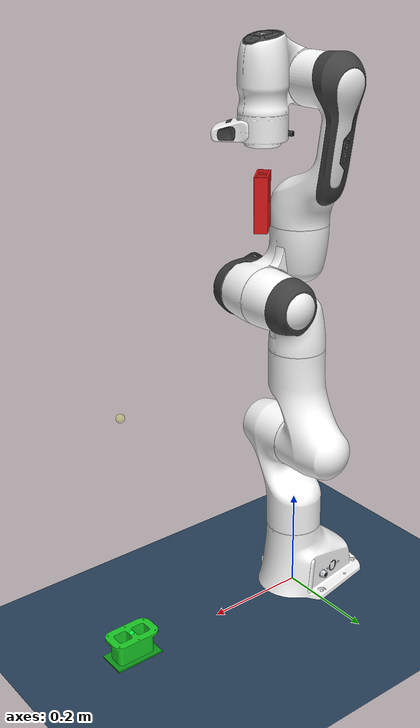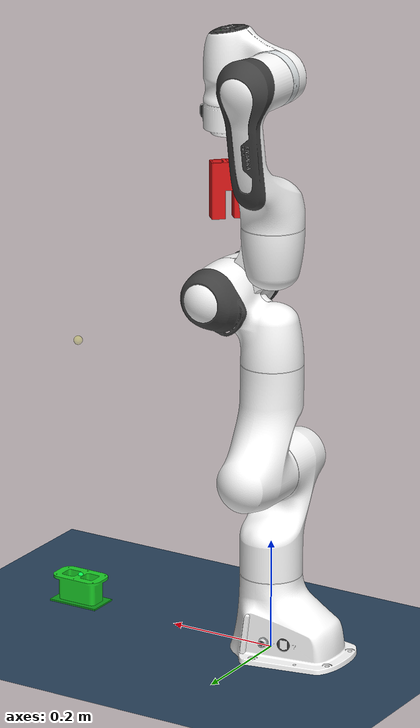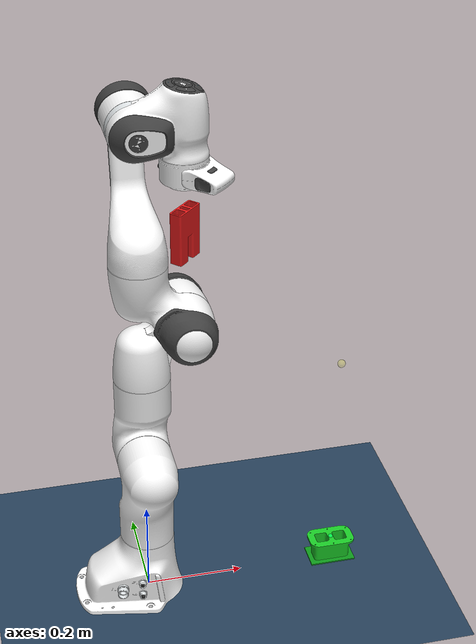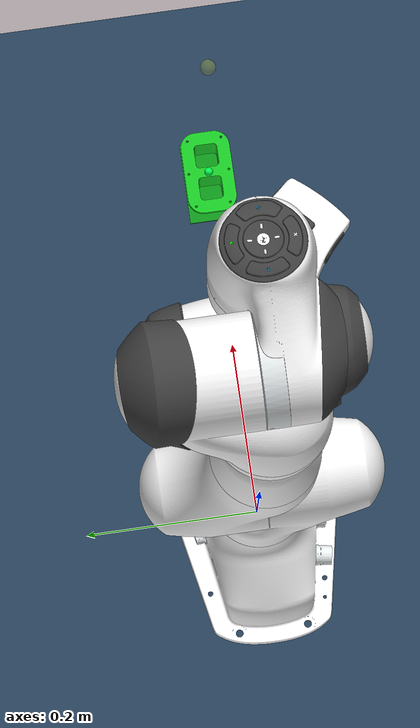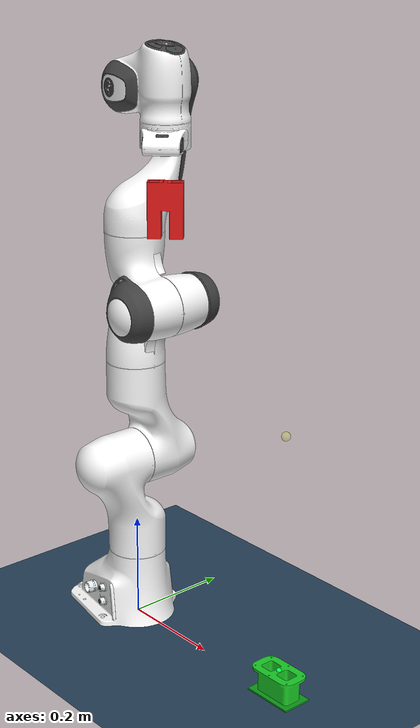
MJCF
<mujoco model="InsertArena">
  <include file="panda_insert.xml"/>

  <option timestep=".002" noslip_iterations="5" noslip_tolerance="0"/>

  <statistic center="0.35 0 0.4" extent=".8"/>

  <visual>
    <headlight diffuse=".4 .4 .4" ambient=".5 .5 .5"/>
    <global azimuth="160" elevation="-20" offheight="128" offwidth="128"/>
    <quality offsamples="8"/>
  </visual>

  <asset>
    <texture type="skybox" builtin="gradient" rgb1=".3 .5 .7" rgb2="0 0 0" width="32" height="512"/>
    <texture name="grid" type="2d" builtin="checker" width="512" height="512" rgb1=".1 .2 .3" rgb2=".2 .3 .4"/>
    <material name="grid" texture="grid" texrepeat="2 2" texuniform="true" reflectance="0"/>
    <!-- STL meshes: 红插头 (red plug), 绿插座 (green socket) -->
    <!-- scale="0.001 0.001 0.001" converts mm -> m (typical CAD export unit) -->
    <mesh name="red_plug_mesh"    file="红插头.STL"   scale="0.001 0.001 0.001"/>
    <mesh name="green_socket_mesh" file="绿插座.STL"  scale="0.001 0.001 0.001"/>
  </asset>

  <worldbody>
    <camera name="front" pos="1.3 0.0 0.8" quat="0.5963678 0.3799282 0.3799282 0.5963678" fovy="45"/>
    <light pos="0 0 3" dir="0 0 -1" diffuse="1 1 1" specular=".3 .3 .3"/>
    <light pos="0.4 0 1.0" mode="targetbodycom" target="socket" diffuse=".8 .8 .8" specular=".3 .3 .3"/>
    <geom name="floor" size="3 3 0.01" type="plane" material="grid"/>

    <body name="socket" pos="0.4 0 0.002">
      <freejoint name="socket_joint"/>
      <!-- Visual mesh (now correctly centered and oriented: X±48mm, Y±29mm, Z 0-50mm) -->
      <geom name="socket_visual" type="mesh" mesh="green_socket_mesh"
            rgba="0.1 0.8 0.15 1" contype="0" conaffinity="0" group="2"/>
      <!-- Outer left wall  (X: -48 to -38, full Y, full Z) -->
      <geom name="sock_wall_ol" type="box" size="0.005 0.0287 0.025"
            pos="-0.0433 0 0.025" rgba="0.1 0.8 0.15 0" mass="0.2"/>
      <!-- Outer right wall (X: +38 to +48, full Y, full Z) -->
      <geom name="sock_wall_or" type="box" size="0.005 0.0287 0.025"
            pos=" 0.0433 0 0.025" rgba="0.1 0.8 0.15 0" mass="0.2"/>
      <!-- Center divider  (X: -9 to +9, hole depth Y, full Z) -->
      <geom name="sock_wall_cd" type="box" size="0.0086 0.011 0.025"
            pos="0 0 0.025" rgba="0.1 0.8 0.15 0" mass="0.2"/>
      <!-- Front wall (full X, Y: +11 to +29, full Z) -->
      <geom name="sock_wall_f" type="box" size="0.0483 0.009 0.025"
            pos="0 0.0197 0.025" rgba="0.1 0.8 0.15 0" mass="0.4"/>
      <!-- Back wall  (full X, Y: -29 to -11, full Z) -->
      <geom name="sock_wall_b" type="box" size="0.0483 0.009 0.025"
            pos="0 -0.0197 0.025" rgba="0.1 0.8 0.15 0" mass="0.4"/>
      <!-- Bottom plate (full footprint, Z: 0 to 3mm) -->
      <geom name="sock_bottom" type="box" size="0.0483 0.0287 0.0015"
            pos="0 0 0.0015" rgba="0.05 0.6 0.1 1" mass="1.0"/>
      <!-- Opening site: top of the socket hole (Z = 50 mm) -->
      <site name="socket_opening" pos="0 0 0.050" size="0.005" rgba="0 1 0.3 1"/>
    </body>

    <!-- Invisible target helper for visualising goal (can be used in reward shaping) -->
    <body name="target" pos=".4 0 .5" quat="0 1 0 0" mocap="true">
      <geom name="target" type="sphere" size=".008" contype="0" conaffinity="0"
            rgba=".9 .9 .1 0.25"/>
    </body>
  </worldbody>

  <sensor>
    <!-- Connector insertion tip (world position) -->
    <framepos name="connector_tip_pos"    objtype="site" objname="connector_tip"/>
    <!-- Socket opening centre (world position, = insertion target) -->
    <framepos name="socket_opening_pos"  objtype="site" objname="socket_opening"/>
    <!-- Whole socket body position (used in observation) -->
    <framepos name="socket_pos"           objtype="body" objname="socket"/>
    <!-- Gripper pinch (inherited from panda.xml, convenient alias) -->
  </sensor>
</mujoco>

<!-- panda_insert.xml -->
<mujoco model="panda">
  <compiler angle="radian" autolimits="true"/>

  <default>
    <default class="panda">
      <joint armature="0.1" damping="1" axis="0 0 1" range="-2.8973 2.8973"/>
      <default class="panda/visual">
        <geom type="mesh" contype="0" conaffinity="0" group="2"/>
      </default>
      <default class="panda/collision">
        <geom type="mesh" group="3"/>
      </default>
      <site size="0.001" rgba="0.5 0.5 0.5 0.3" group="4"/>
    </default>
    <default class="2f85">
      <mesh scale="0.001 0.001 0.001"/>
      <general biastype="affine"/>
      <site type="sphere" rgba="0.9 0.9 0.9 1" size="0.005" group="4"/>
      <joint axis="1 0 0"/>
      <default class="driver">
        <joint range="0 0.8" armature="0.005" damping="0.1" solimplimit="0.95 0.99 0.001" solreflimit="0.005 1"/>
      </default>
      <default class="follower">
        <joint range="-0.872664 0.872664" pos="0 -0.018 0.0065" solimplimit="0.95 0.99 0.001" solreflimit="0.005 1"/>
      </default>
      <default class="spring_link">
        <joint range="-0.29670597283 0.8" stiffness="0.05" springref="2.62" damping="0.00125"/>
      </default>
      <default class="coupler">
        <joint range="-1.57 0" solimplimit="0.95 0.99 0.001" solreflimit="0.005 1"/>
      </default>
      <default class="2f85/visual">
        <geom type="mesh" contype="0" conaffinity="0" group="2"/>
      </default>
      <default class="2f85/collision">
        <geom type="mesh" group="3"/>
        <default class="pad_box1">
          <geom mass="0" type="box" pos="0 -0.0026 0.028125" size="0.011 0.004 0.009375" friction="0.7"
            solimp="0.95 0.99 0.001" solref="0.004 1" priority="1" rgba="0.55 0.55 0.55 1"/>
        </default>
        <default class="pad_box2">
          <geom mass="0" type="box" pos="0 -0.0026 0.009375" size="0.011 0.004 0.009375" friction="0.6"
            solimp="0.95 0.99 0.001" solref="0.004 1" priority="1" rgba="0.45 0.45 0.45 1"/>
        </default>
      </default>
    </default>
  </default>

  <asset>
    <material name="white" rgba="1 1 1 1"/>
    <material name="off_white" rgba="0.901961 0.921569 0.929412 1"/>
    <material name="dark_grey" rgba="0.25 0.25 0.25 1"/>
    <material name="green" rgba="0 1 0 1"/>
    <material name="light_blue" rgba="0.039216 0.541176 0.780392 1"/>
    <material name="metal" rgba="0.58 0.58 0.58 1"/>
    <material name="silicone" rgba="0.1882 0.1882 0.1882 1"/>
    <material name="gray" rgba="0.4627 0.4627 0.4627 1"/>
    <material name="black" rgba="0.149 0.149 0.149 1"/>

    <mesh name="link0_c" file="franka_emika_panda/assets/link0.stl"/>
    <mesh name="link1_c" file="franka_emika_panda/assets/link1.stl"/>
    <mesh name="link2_c" file="franka_emika_panda/assets/link2.stl"/>
    <mesh name="link3_c" file="franka_emika_panda/assets/link3.stl"/>
    <mesh name="link4_c" file="franka_emika_panda/assets/link4.stl"/>
    <mesh name="link5_c0" file="franka_emika_panda/assets/link5_collision_0.obj"/>
    <mesh name="link5_c1" file="franka_emika_panda/assets/link5_collision_1.obj"/>
    <mesh name="link5_c2" file="franka_emika_panda/assets/link5_collision_2.obj"/>
    <mesh name="link6_c" file="franka_emika_panda/assets/link6.stl"/>
    <mesh name="link7_c" file="franka_emika_panda/assets/link7.stl"/>
    <mesh file="franka_emika_panda/assets/link0_0.obj"/>
    <mesh file="franka_emika_panda/assets/link0_1.obj"/>
    <mesh file="franka_emika_panda/assets/link0_2.obj"/>
    <mesh file="franka_emika_panda/assets/link0_3.obj"/>
    <mesh file="franka_emika_panda/assets/link0_4.obj"/>
    <mesh file="franka_emika_panda/assets/link0_5.obj"/>
    <mesh file="franka_emika_panda/assets/link0_7.obj"/>
    <mesh file="franka_emika_panda/assets/link0_8.obj"/>
    <mesh file="franka_emika_panda/assets/link0_9.obj"/>
    <mesh file="franka_emika_panda/assets/link0_10.obj"/>
    <mesh file="franka_emika_panda/assets/link0_11.obj"/>
    <mesh file="franka_emika_panda/assets/link1.obj"/>
    <mesh file="franka_emika_panda/assets/link2.obj"/>
    <mesh file="franka_emika_panda/assets/link3_0.obj"/>
    <mesh file="franka_emika_panda/assets/link3_1.obj"/>
    <mesh file="franka_emika_panda/assets/link3_2.obj"/>
    <mesh file="franka_emika_panda/assets/link3_3.obj"/>
    <mesh file="franka_emika_panda/assets/link4_0.obj"/>
    <mesh file="franka_emika_panda/assets/link4_1.obj"/>
    <mesh file="franka_emika_panda/assets/link4_2.obj"/>
    <mesh file="franka_emika_panda/assets/link4_3.obj"/>
    <mesh file="franka_emika_panda/assets/link5_0.obj"/>
    <mesh file="franka_emika_panda/assets/link5_1.obj"/>
    <mesh file="franka_emika_panda/assets/link5_2.obj"/>
    <mesh file="franka_emika_panda/assets/link6_0.obj"/>
    <mesh file="franka_emika_panda/assets/link6_1.obj"/>
    <mesh file="franka_emika_panda/assets/link6_2.obj"/>
    <mesh file="franka_emika_panda/assets/link6_3.obj"/>
    <mesh file="franka_emika_panda/assets/link6_4.obj"/>
    <mesh file="franka_emika_panda/assets/link6_5.obj"/>
    <mesh file="franka_emika_panda/assets/link6_6.obj"/>
    <mesh file="franka_emika_panda/assets/link6_7.obj"/>
    <mesh file="franka_emika_panda/assets/link6_8.obj"/>
    <mesh file="franka_emika_panda/assets/link6_9.obj"/>
    <mesh file="franka_emika_panda/assets/link6_10.obj"/>
    <mesh file="franka_emika_panda/assets/link6_11.obj"/>
    <mesh file="franka_emika_panda/assets/link6_12.obj"/>
    <mesh file="franka_emika_panda/assets/link6_13.obj"/>
    <mesh file="franka_emika_panda/assets/link6_14.obj"/>
    <mesh file="franka_emika_panda/assets/link6_15.obj"/>
    <mesh file="franka_emika_panda/assets/link6_16.obj"/>
    <mesh file="franka_emika_panda/assets/link7_0.obj"/>
    <mesh file="franka_emika_panda/assets/link7_1.obj"/>
    <mesh file="franka_emika_panda/assets/link7_2.obj"/>
    <mesh file="franka_emika_panda/assets/link7_3.obj"/>
    <mesh file="franka_emika_panda/assets/link7_4.obj"/>
    <mesh file="franka_emika_panda/assets/link7_5.obj"/>
    <mesh file="franka_emika_panda/assets/link7_6.obj"/>
    <mesh file="franka_emika_panda/assets/link7_7.obj"/>
    <mesh class="2f85" file="robotiq_2f85/assets/base_mount.stl"/>
    <mesh class="2f85" file="robotiq_2f85/assets/base.stl"/>
    <mesh class="2f85" file="robotiq_2f85/assets/driver.stl"/>
    <mesh class="2f85" file="robotiq_2f85/assets/coupler.stl"/>
    <mesh class="2f85" file="robotiq_2f85/assets/follower.stl"/>
    <mesh class="2f85" file="robotiq_2f85/assets/pad.stl"/>
    <mesh class="2f85" file="robotiq_2f85/assets/silicone_pad.stl"/>
    <mesh class="2f85" file="robotiq_2f85/assets/spring_link.stl"/>
  </asset>

  <worldbody>
    <body name="link0" childclass="panda">
      <inertial mass="0.629769" pos="-0.041018 -0.00014 0.049974"
        fullinertia="0.00315 0.00388 0.004285 8.2904e-7 0.00015 8.2299e-6"/>
      <geom mesh="link0_0" material="off_white" class="panda/visual"/>
      <geom mesh="link0_1" material="dark_grey" class="panda/visual"/>
      <geom mesh="link0_2" material="off_white" class="panda/visual"/>
      <geom mesh="link0_3" material="dark_grey" class="panda/visual"/>
      <geom mesh="link0_4" material="off_white" class="panda/visual"/>
      <geom mesh="link0_5" material="dark_grey" class="panda/visual"/>
      <geom mesh="link0_7" material="white" class="panda/visual"/>
      <geom mesh="link0_8" material="white" class="panda/visual"/>
      <geom mesh="link0_9" material="dark_grey" class="panda/visual"/>
      <geom mesh="link0_10" material="off_white" class="panda/visual"/>
      <geom mesh="link0_11" material="white" class="panda/visual"/>
      <geom mesh="link0_c" class="panda/collision"/>
      <body name="link1" pos="0 0 0.333">
        <inertial mass="4.970684" pos="0.003875 0.002081 -0.04762"
          fullinertia="0.70337 0.70661 0.0091170 -0.00013900 0.0067720 0.019169"/>
        <joint name="joint1"/>
        <site name="joint1"/>
        <geom material="white" mesh="link1" class="panda/visual"/>
        <geom mesh="link1_c" class="panda/collision"/>
        <body name="link2" quat="1 -1 0 0">
          <inertial mass="0.646926" pos="-0.003141 -0.02872 0.003495"
            fullinertia="0.0079620 2.8110e-2 2.5995e-2 -3.925e-3 1.0254e-2 7.04e-4"/>
          <joint name="joint2" range="-1.7628 1.7628"/>
          <site name="joint2"/>
          <geom material="white" mesh="link2" class="panda/visual"/>
          <geom mesh="link2_c" class="panda/collision"/>
          <body name="link3" pos="0 -0.316 0" quat="1 1 0 0">
            <inertial mass="3.228604" pos="2.7518e-2 3.9252e-2 -6.6502e-2"
              fullinertia="3.7242e-2 3.6155e-2 1.083e-2 -4.761e-3 -1.1396e-2 -1.2805e-2"/>
            <joint name="joint3"/>
            <site name="joint3"/>
            <geom mesh="link3_0" material="white" class="panda/visual"/>
            <geom mesh="link3_1" material="white" class="panda/visual"/>
            <geom mesh="link3_2" material="white" class="panda/visual"/>
            <geom mesh="link3_3" material="dark_grey" class="panda/visual"/>
            <geom mesh="link3_c" class="panda/collision"/>
            <body name="link4" pos="0.0825 0 0" quat="1 1 0 0">
              <inertial mass="3.587895" pos="-5.317e-2 1.04419e-1 2.7454e-2"
                fullinertia="2.5853e-2 1.9552e-2 2.8323e-2 7.796e-3 -1.332e-3 8.641e-3"/>
              <joint name="joint4" range="-3.0718 -0.0698"/>
              <site name="joint4"/>
              <geom mesh="link4_0" material="white" class="panda/visual"/>
              <geom mesh="link4_1" material="white" class="panda/visual"/>
              <geom mesh="link4_2" material="dark_grey" class="panda/visual"/>
              <geom mesh="link4_3" material="white" class="panda/visual"/>
              <geom mesh="link4_c" class="panda/collision"/>
              <body name="link5" pos="-0.0825 0.384 0" quat="1 -1 0 0">
                <inertial mass="1.225946" pos="-1.1953e-2 4.1065e-2 -3.8437e-2"
                  fullinertia="3.5549e-2 2.9474e-2 8.627e-3 -2.117e-3 -4.037e-3 2.29e-4"/>
                <joint name="joint5"/>
                <site name="joint5"/>
                <geom mesh="link5_0" material="dark_grey" class="panda/visual"/>
                <geom mesh="link5_1" material="white" class="panda/visual"/>
                <geom mesh="link5_2" material="white" class="panda/visual"/>
                <geom mesh="link5_c0" class="panda/collision"/>
                <geom mesh="link5_c1" class="panda/collision"/>
                <geom mesh="link5_c2" class="panda/collision"/>
                <body name="link6" quat="1 1 0 0">
                  <inertial mass="1.666555" pos="6.0149e-2 -1.4117e-2 -1.0517e-2"
                    fullinertia="1.964e-3 4.354e-3 5.433e-3 1.09e-4 -1.158e-3 3.41e-4"/>
                  <joint name="joint6" range="-0.0175 3.7525"/>
                  <site name="joint6"/>
                  <geom mesh="link6_0" material="off_white" class="panda/visual"/>
                  <geom mesh="link6_1" material="white" class="panda/visual"/>
                  <geom mesh="link6_2" material="dark_grey" class="panda/visual"/>
                  <geom mesh="link6_3" material="white" class="panda/visual"/>
                  <geom mesh="link6_4" material="white" class="panda/visual"/>
                  <geom mesh="link6_5" material="white" class="panda/visual"/>
                  <geom mesh="link6_6" material="white" class="panda/visual"/>
                  <geom mesh="link6_7" material="light_blue" class="panda/visual"/>
                  <geom mesh="link6_8" material="light_blue" class="panda/visual"/>
                  <geom mesh="link6_9" material="dark_grey" class="panda/visual"/>
                  <geom mesh="link6_10" material="dark_grey" class="panda/visual"/>
                  <geom mesh="link6_11" material="white" class="panda/visual"/>
                  <geom mesh="link6_12" material="green" class="panda/visual"/>
                  <geom mesh="link6_13" material="white" class="panda/visual"/>
                  <geom mesh="link6_14" material="dark_grey" class="panda/visual"/>
                  <geom mesh="link6_15" material="dark_grey" class="panda/visual"/>
                  <geom mesh="link6_16" material="white" class="panda/visual"/>
                  <geom mesh="link6_c" class="panda/collision"/>
                  <body name="link7" pos="0.088 0 0" quat="1 1 0 0">
                    <inertial mass="7.35522e-01" pos="1.0517e-2 -4.252e-3 6.1597e-2"
                      fullinertia="1.2516e-2 1.0027e-2 4.815e-3 -4.28e-4 -1.196e-3 -7.41e-4"/>
                    <joint name="joint7"/>
                    <site name="joint7"/>
                    <geom mesh="link7_0" material="white" class="panda/visual"/>
                    <geom mesh="link7_1" material="dark_grey" class="panda/visual"/>
                    <geom mesh="link7_2" material="dark_grey" class="panda/visual"/>
                    <geom mesh="link7_3" material="dark_grey" class="panda/visual"/>
                    <geom mesh="link7_4" material="dark_grey" class="panda/visual"/>
                    <geom mesh="link7_5" material="dark_grey" class="panda/visual"/>
                    <geom mesh="link7_6" material="dark_grey" class="panda/visual"/>
                    <geom mesh="link7_7" material="white" class="panda/visual"/>
                    <geom mesh="link7_c" class="panda/collision"/>
                    <body name="attachment" pos="0 0 0.107" quat="0.3826834 0 0 0.9238795">
                      <camera name="handcam_depth" pos="-0.05 0 0" fovy="62" quat="0 1 -1 0"/>
                      <camera name="handcam_rgb" pos="-0.05 0.015 0" fovy="42.5" quat="0 1 -1 0"/>
                      <site name="attachment_site" quat="0 0 0 1"/>
                      <body name="base_mount" quat="-1 0 0 1" childclass="2f85">
                        <geom class="2f85/visual" mesh="base_mount" material="black"/>
                        <geom class="2f85/collision" mesh="base_mount"/>
                        <body name="base" pos="0 0 0.0038" quat="1 0 0 -1">
                          <inertial mass="0.777441" pos="0 -2.70394e-05 0.0354675" quat="1 -0.00152849 0 0"
                            diaginertia="0.000260285 0.000225381 0.000152708"/>
                          <geom class="2f85/visual" mesh="base" material="black"/>
                          <geom class="2f85/collision" mesh="base"/>
                          <site name="pinch" pos="0 0 0.145"/>
                          <body name="connector" pos="0 0 0.045">
                            <!-- Connector body at 4.5 cm below gripper base (in fingers region).
                                 Z=0 is top of plug, Z=0.1m is tip -> tip aligns with pinch site. -->
                            <geom name="connector_visual" type="mesh" mesh="red_plug_mesh"
                                  rgba="0.9 0.1 0.1 1" contype="0" conaffinity="0" group="2"/>
                            <site name="connector_tip" pos="0 0 0.100" size="0.005" rgba="1 0.2 0.2 1"/>
                          </body>
                          <body name="right_driver" pos="0 0.0306011 0.054904">
                            <inertial mass="0.00899563" pos="2.96931e-12 0.0177547 0.00107314"
                              quat="0.681301 0.732003 0 0" diaginertia="1.72352e-06 1.60906e-06 3.22006e-07"/>
                            <joint name="right_driver_joint" class="driver"/>
                            <geom class="2f85/visual" mesh="driver" material="gray"/>
                            <geom class="2f85/collision" mesh="driver"/>
                            <body name="right_coupler" pos="0 0.0315 -0.0041">
                              <inertial mass="0.0140974" pos="0 0.00301209 0.0232175"
                                quat="0.705636 -0.0455904 0.0455904 0.705636"
                                diaginertia="4.16206e-06 3.52216e-06 8.88131e-07"/>
                              <joint name="right_coupler_joint" class="coupler"/>
                              <geom class="2f85/visual" mesh="coupler" material="black"/>
                              <geom class="2f85/collision" mesh="coupler"/>
                            </body>
                          </body>
                          <body name="right_spring_link" pos="0 0.0132 0.0609">
                            <inertial mass="0.0221642" pos="-8.65005e-09 0.0181624 0.0212658"
                              quat="0.663403 -0.244737 0.244737 0.663403"
                              diaginertia="8.96853e-06 6.71733e-06 2.63931e-06"/>
                            <joint name="right_spring_link_joint" class="spring_link"/>
                            <geom class="2f85/visual" mesh="spring_link" material="black"/>
                            <geom class="2f85/collision" mesh="spring_link"/>
                            <body name="right_follower" pos="0 0.055 0.0375">
                              <inertial mass="0.0125222" pos="0 -0.011046 0.0124786" quat="1 0.1664 0 0"
                                diaginertia="2.67415e-06 2.4559e-06 6.02031e-07"/>
                              <joint name="right_follower_joint" class="follower"/>
                              <geom class="2f85/visual" mesh="follower" material="black"/>
                              <geom class="2f85/collision" mesh="follower"/>
                              <body name="right_pad" pos="0 -0.0189 0.01352">
                                <geom class="pad_box1" name="right_pad1"/>
                                <geom class="pad_box2" name="right_pad2"/>
                                <inertial mass="0.0035" pos="0 -0.0025 0.0185" quat="0.707107 0 0 0.707107"
                                  diaginertia="4.73958e-07 3.64583e-07 1.23958e-07"/>
                                <geom class="2f85/visual" mesh="pad"/>
                                <body name="right_silicone_pad">
                                  <geom class="2f85/visual" mesh="silicone_pad" material="black"/>
                                </body>
                              </body>
                            </body>
                          </body>
                          <body name="left_driver" pos="0 -0.0306011 0.054904" quat="0 0 0 1">
                            <inertial mass="0.00899563" pos="0 0.0177547 0.00107314" quat="0.681301 0.732003 0 0"
                              diaginertia="1.72352e-06 1.60906e-06 3.22006e-07"/>
                            <joint name="left_driver_joint" class="driver"/>
                            <geom class="2f85/visual" mesh="driver" material="gray"/>
                            <geom class="2f85/collision" mesh="driver"/>
                            <body name="left_coupler" pos="0 0.0315 -0.0041">
                              <inertial mass="0.0140974" pos="0 0.00301209 0.0232175"
                                quat="0.705636 -0.0455904 0.0455904 0.705636"
                                diaginertia="4.16206e-06 3.52216e-06 8.88131e-07"/>
                              <joint name="left_coupler_joint" class="coupler"/>
                              <geom class="2f85/visual" mesh="coupler" material="black"/>
                              <geom class="2f85/collision" mesh="coupler"/>
                            </body>
                          </body>
                          <body name="left_spring_link" pos="0 -0.0132 0.0609" quat="0 0 0 1">
                            <inertial mass="0.0221642" pos="-8.65005e-09 0.0181624 0.0212658"
                              quat="0.663403 -0.244737 0.244737 0.663403"
                              diaginertia="8.96853e-06 6.71733e-06 2.63931e-06"/>
                            <joint name="left_spring_link_joint" class="spring_link"/>
                            <geom class="2f85/visual" mesh="spring_link" material="black"/>
                            <geom class="2f85/collision" mesh="spring_link"/>
                            <body name="left_follower" pos="0 0.055 0.0375">
                              <inertial mass="0.0125222" pos="0 -0.011046 0.0124786" quat="1 0.1664 0 0"
                                diaginertia="2.67415e-06 2.4559e-06 6.02031e-07"/>
                              <joint name="left_follower_joint" class="follower"/>
                              <geom class="2f85/visual" mesh="follower" material="black"/>
                              <geom class="2f85/collision" mesh="follower"/>
                              <body name="left_pad" pos="0 -0.0189 0.01352">
                                <geom class="pad_box1" name="left_pad1"/>
                                <geom class="pad_box2" name="left_pad2"/>
                                <inertial mass="0.0035" pos="0 -0.0025 0.0185" quat="1 0 0 1"
                                  diaginertia="4.73958e-07 3.64583e-07 1.23958e-07"/>
                                <geom class="2f85/visual" mesh="pad"/>
                                <body name="left_silicone_pad">
                                  <geom class="2f85/visual" mesh="silicone_pad" material="black"/>
                                </body>
                              </body>
                            </body>
                          </body>
                        </body>
                      </body>
                    </body>
                  </body>
                </body>
              </body>
            </body>
          </body>
        </body>
      </body>
    </body>
  </worldbody>

  <contact>
    <exclude body1="base" body2="left_driver"/>
    <exclude body1="base" body2="right_driver"/>
    <exclude body1="base" body2="left_spring_link"/>
    <exclude body1="base" body2="right_spring_link"/>
    <exclude body1="right_coupler" body2="right_follower"/>
    <exclude body1="left_coupler" body2="left_follower"/>
  </contact>

  <tendon>
    <fixed name="split">
      <joint joint="right_driver_joint" coef="0.5"/>
      <joint joint="left_driver_joint" coef="0.5"/>
    </fixed>
  </tendon>

  <equality>
    <connect anchor="0 0 0" body1="right_follower" body2="right_coupler" solimp="0.95 0.99 0.001" solref="0.005 1"/>
    <connect anchor="0 0 0" body1="left_follower" body2="left_coupler" solimp="0.95 0.99 0.001" solref="0.005 1"/>
    <joint joint1="right_driver_joint" joint2="left_driver_joint" polycoef="0 1 0 0 0" solimp="0.95 0.99 0.001"
      solref="0.005 1"/>
  </equality>

  <actuator>
    <motor class="panda" name="actuator1" joint="joint1" ctrlrange="-87 87"/>
    <motor class="panda" name="actuator2" joint="joint2" ctrlrange="-87 87"/>
    <motor class="panda" name="actuator3" joint="joint3" ctrlrange="-87 87"/>
    <motor class="panda" name="actuator4" joint="joint4" ctrlrange="-87 87"/>
    <motor class="panda" name="actuator5" joint="joint5" ctrlrange="-12 12"/>
    <motor class="panda" name="actuator6" joint="joint6" ctrlrange="-12 12"/>
    <motor class="panda" name="actuator7" joint="joint7" ctrlrange="-12 12"/>
    <general class="2f85" name="fingers_actuator" tendon="split" forcerange="-5 5" ctrlrange="0 255"
      gainprm="0.3137255 0 0" biasprm="0 -100 -10"/>
  </actuator>

  <sensor>
    <jointpos name="panda/joint1_pos" joint="joint1"/>
    <jointpos name="panda/joint2_pos" joint="joint2"/>
    <jointpos name="panda/joint3_pos" joint="joint3"/>
    <jointpos name="panda/joint4_pos" joint="joint4"/>
    <jointpos name="panda/joint5_pos" joint="joint5"/>
    <jointpos name="panda/joint6_pos" joint="joint6"/>
    <jointpos name="panda/joint7_pos" joint="joint7"/>

    <jointvel name="panda/joint1_vel" joint="joint1"/>
    <jointvel name="panda/joint2_vel" joint="joint2"/>
    <jointvel name="panda/joint3_vel" joint="joint3"/>
    <jointvel name="panda/joint4_vel" joint="joint4"/>
    <jointvel name="panda/joint5_vel" joint="joint5"/>
    <jointvel name="panda/joint6_vel" joint="joint6"/>
    <jointvel name="panda/joint7_vel" joint="joint7"/>

    <torque name="panda/joint1_torque" site="joint1"/>
    <torque name="panda/joint2_torque" site="joint2"/>
    <torque name="panda/joint3_torque" site="joint3"/>
    <torque name="panda/joint4_torque" site="joint4"/>
    <torque name="panda/joint5_torque" site="joint5"/>
    <torque name="panda/joint6_torque" site="joint6"/>
    <torque name="panda/joint7_torque" site="joint7"/>

    <force name="panda/wrist_force" site="attachment_site"/>
    <torque name="panda/wrist_torque" site="attachment_site"/>

    <framepos name="2f85/pinch_pos" objtype="site" objname="pinch"/>
    <framequat name="2f85/pinch_quat" objtype="site" objname="pinch"/>
    <framelinvel name="2f85/pinch_vel" objtype="site" objname="pinch"/>
  </sensor>
</mujoco>
